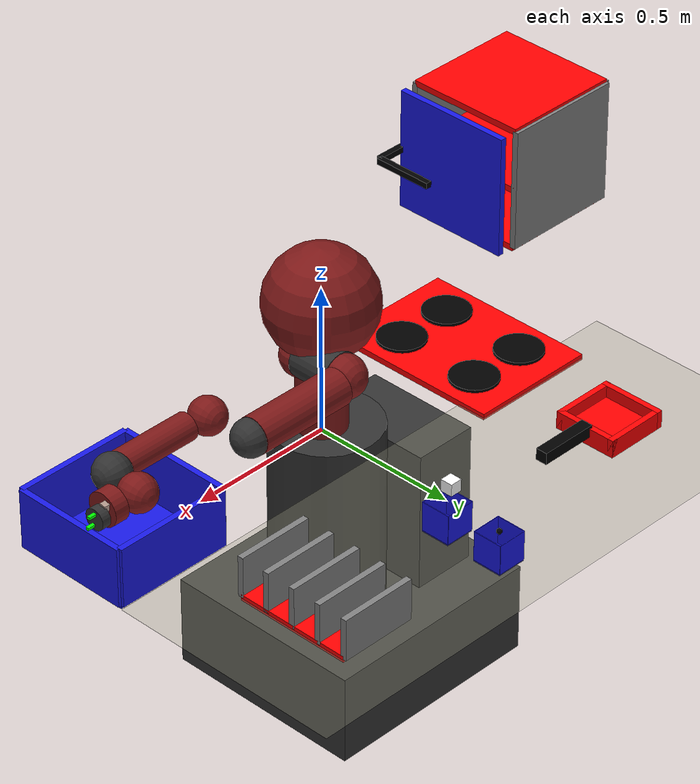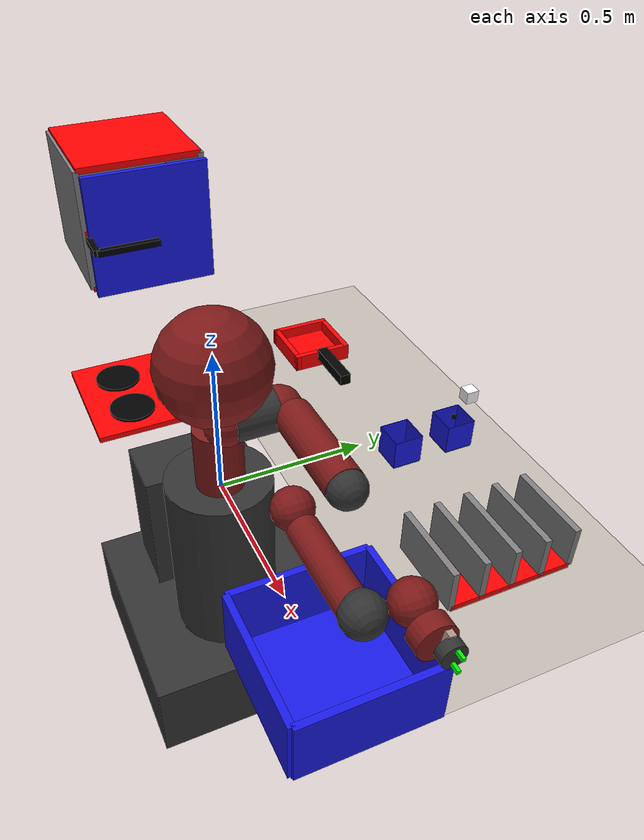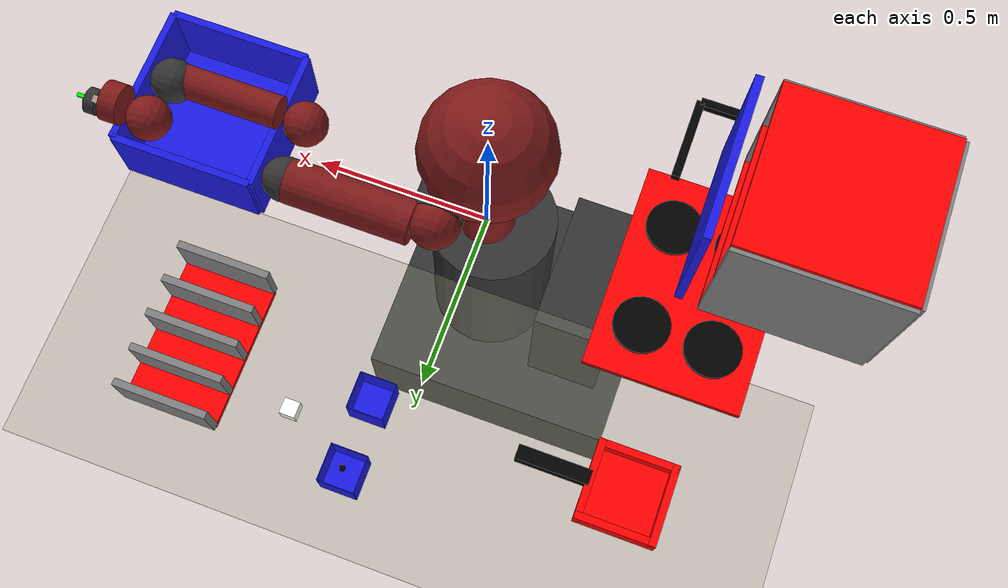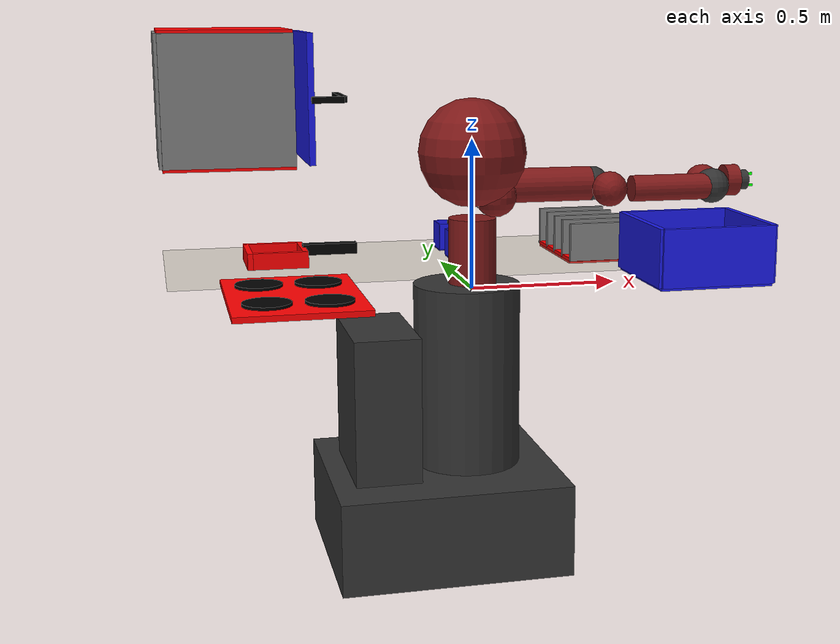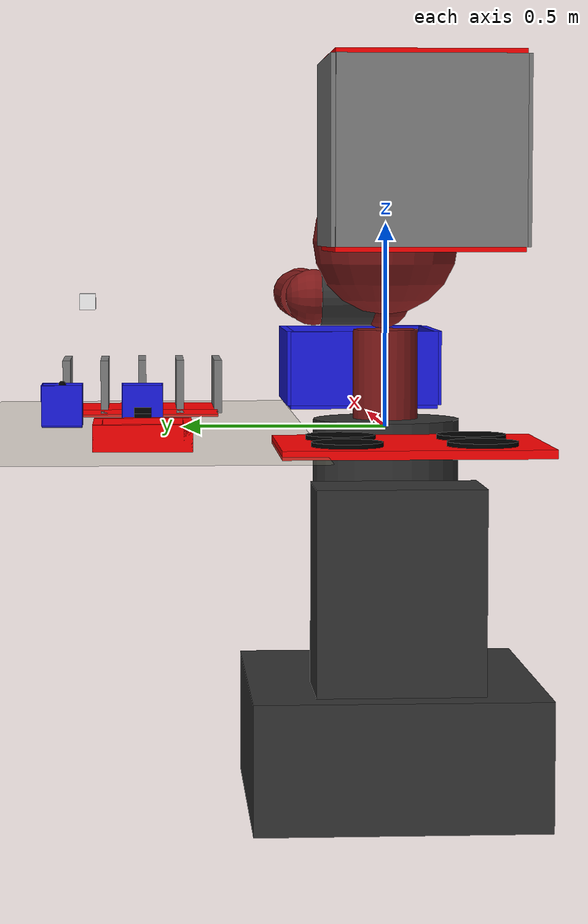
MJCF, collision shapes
<mujoco model="sawyer">
    <compiler angle="radian" meshdir="meshes/" />
    <size njmax="1000" nconmax="1000" />
    <asset>
        <mesh name="pedestal" file="pedestal.stl" />
        <mesh name="base" file="base.stl" />
        <mesh name="l0" file="l0.stl" />
        <mesh name="head" file="head.stl" />
        <mesh name="l1" file="l1.stl" />
        <mesh name="l2" file="l2.stl" />
        <mesh name="l3" file="l3.stl" />
        <mesh name="l4" file="l4.stl" />
        <mesh name="l5" file="l5.stl" />
        <mesh name="l6" file="l6.stl" />
        <mesh file="mug.stl" scale="0.0014419716113 0.0014419716113 0.0014419716113" name="object_mesh0"/>
        <mesh file="candle_holder.stl" scale="0.00221564763838 0.00221564763838 0.00221564763838" name="object_mesh1"/>
        <mesh scale="0.00391787640326 0.00391787640326 0.00391787640326" name="object_mesh2" file="Rook.stl"/>
        <mesh file="fox.stl" scale="0.00138148311578 0.00138148311578 0.00138148311578" name="object_mesh3"/>
        <mesh file="Gengar.stl" scale="0.000210652537981 0.000210652537981 0.000210652537981" name="object_mesh4"/>
        <mesh file="vase1.stl" scale="0.000775193841988 0.000775193841988 0.000775193841988" name="object_mesh5"/>
        <mesh file="Trophy.stl" scale="0.00449730778558 0.00449730778558 0.00449730778558" name="object_mesh6"/>
        <mesh file="cupcake.stl" scale="0.00191879658518 0.00191879658518 0.00191879658518" name="object_mesh7"/>
        <mesh file="Pawn.stl" scale="0.00338627830315 0.00338627830315 0.00338627830315" name="object_mesh8"/>
        <mesh name="object_mesh9" file="Love_Box_1.stl" scale="0.001411430619914 0.00141430619914 0.00211430619914"/>
    </asset>

    <default>
        <joint limited="true" damping="1" stiffness="0" armature=".1" user="0"/>
        <geom solref="0.008 1" solimp="0.95 0.95 0.01" margin="0.001" user="0"/>
        <motor ctrllimited="true" ctrlrange="-1 1"/>
        <position ctrllimited="true"/>

        <default class='0'>
            <geom friction="1 0.005 0.001" rgba=".75 .6 .5 1" contype="1" conaffinity="0"/>
        </default>

        <default class='1'>
            <geom friction="1 0.005 0.001" rgba=".7 .6 .55 1" contype="1" conaffinity="0"/>
        </default>

        <default class='arm'>
            <joint damping="5"/>
        </default>
    </default>

    <equality>
        <weld body1="mocap" body2="leftclaw"></weld>
    </equality>

    <worldbody>

        <geom name="tableTop" type="plane" pos="0 0.6 0" size="1. 0.4 0.5" rgba=".6 .6 .5 1" contype="1" conaffinity="1" />

        <geom name="tableTop2" type="plane" pos="0.6 0 0" size="0.4 0.4 0.5" rgba=".6 .6 .5 1" contype="1" conaffinity="1" />

        <geom name="tableTop3" type="plane" pos="-0.6 0 0" size="0.4 0.4 0.5" rgba=".6 .6 .5 1" contype="1" conaffinity="1" />

        <body name="sink" pos="0.8 0 0.01">
	        <geom type="box" pos="0 0 0" size="0.2 0.2 0.01" rgba=".1 .1 .9 1" contype="1" conaffinity="1"/>
	        <geom type="box" pos="0.2 0 0.1" size="0.01 0.2 0.1" rgba=".1 .1 .9 1" contype="1" conaffinity="1"/>
	        <geom type="box" pos="-0.2 0 0.1" size="0.01 0.2 0.1" rgba=".1 .1 .9 1" contype="1" conaffinity="1"/>
	        <geom type="box" pos="0 0.2 0.1" size="0.2 0.01 0.1" rgba=".1 .1 .9 1" contype="1" conaffinity="1"/>
	        <geom type="box" pos="0 -0.2 0.1" size="0.2 0.01 0.1" rgba=".1 .1 .9 1" contype="1" conaffinity="1"/>
	    </body>

	    <body name="cabinet" pos="-0.8 0 0.45">
	        <geom type="box" pos="0 0 0" size="0.2 0.2 0.01" rgba="1 0 0 1" contype="1" conaffinity="1"/>
	        <geom type="box" pos="-0.2 0 0.2" size="0.01 0.2 0.2" contype="1" conaffinity="1"/>
	        <geom type="box" pos="0 0.2 0.2" size="0.2 0.01 0.2"  contype="1" conaffinity="1"/>
	        <geom type="box" pos="0 -0.2 0.2" size="0.2 0.01 0.2" contype="1" conaffinity="1"/>
	        <geom type="box" pos="0 0 0.4" size="0.2 0.2 0.01" rgba="1 0 0 1" contype="1" conaffinity="1"/>
	        <geom type="box" pos="0 0 0.2" size="0.2 0.2 0.01" rgba="1 0 0 1" contype="1" conaffinity="1"/>

	        <body name="door" pos="0.25 0. 0.2">
	            <joint name="doorjoint" pos="0 0.2 0" axis="0 0 1" type="hinge" limited="true" range="0 3" damping="0.1" armature="0" />
	            <geom type="box" pos="0 0 0" size="0.01 0.2 0.2" rgba=".1 .1 .9 1" contype="1" conaffinity="1"/>
	           	<geom type="box" pos="0.05 -0.2 0" size="0.05 0.01 0.01" rgba="0 0 0 1" contype="1" conaffinity="1"/>
	           	<geom type="box" pos="0.1 -0.1 0" size="0.01 0.1 0.01" rgba="0 0 0 1" contype="1" conaffinity="1"/>
	        </body>

	    </body>

	    <body name="dishrack" pos="0.6 0.6 0.">
	        <geom type="box" pos="0 0 0" size="0.13 0.2 0.01" rgba="1 0 0 1" contype="1" conaffinity="1"/>
	        <geom type="box" pos="0 0.2 0.07" size="0.13 0.01 0.07"  contype="1" conaffinity="1"/>
	        <geom type="box" pos="0 0.1 0.07" size="0.13 0.01 0.07"  contype="1" conaffinity="1"/>
	        <geom type="box" pos="0 0.0 0.07" size="0.13 0.01 0.07"  contype="1" conaffinity="1"/>
	        <geom type="box" pos="0 -0.1 0.07" size="0.13 0.01 0.07"  contype="1" conaffinity="1"/>
	        <geom type="box" pos="0 -0.2 0.07" size="0.13 0.01 0.07"  contype="1" conaffinity="1"/>

	    </body>

	    <body name="stove" pos="-0.6 0 0.">
	        <geom type="box" pos="0 0 0" size="0.22 0.3 0.01" rgba="1 0 0 1" contype="1" conaffinity="1"/>
	        <geom type="cylinder" pos="-0.1 0.15 0.01" size="0.08 0.01" rgba="0 0 0 1" contype="1" conaffinity="1"/>
	       	<geom type="cylinder" pos="-0.1 0.15 0.01" size="0.08 0.01" rgba="0 0 0 1" contype="1" conaffinity="1"/>
	       	<geom type="cylinder" pos="-0.1 -0.15 0.01" size="0.08 0.01" rgba="0 0 0 1" contype="1" conaffinity="1"/>
   	       	<geom type="cylinder" pos="0.1 0.15 0.01" size="0.08 0.01" rgba="0 0 0 1" contype="1" conaffinity="1"/>
	       	<geom type="cylinder" pos="0.1 -0.15 0.01" size="0.08 0.01" rgba="0 0 0 1" contype="1" conaffinity="1"/>

	    </body>

	    <body name="saucepan" pos="-0.6 0.6 0.">

	       	<geom type="box" pos="0 0 0.01" size="0.1 0.1 0.01" rgba="1 0 0 1" contype="1" conaffinity="1"/>
	       	<geom type="box" pos="-0.1 0 0.03" size="0.01 0.11 0.03" rgba="1 0 0 1" contype="1" conaffinity="1"/>
	       	<geom type="box" pos="0.1 0 0.03" size="0.01 0.11 0.03" rgba="1 0 0 1" contype="1" conaffinity="1"/>
	       	<geom type="box" pos="0 0.1 0.03" size="0.11 0.01 0.03" rgba="1 0 0 1" contype="1" conaffinity="1"/>
	       	<geom type="box" pos="0 -0.1 0.03" size="0.11 0.01 0.03" rgba="1 0 0 1" contype="1" conaffinity="1"/>
	       	<geom type="box" pos="0.2 0 0.05" size="0.1 0.02 0.02" rgba="0 0 0 1" contype="1" conaffinity="1"/>
	       	<joint name="saucepanjoint" type="free" limited='false' damping="0" armature="0" />
	    </body>

        <body name="base" pos="0 0 0">
            <site name="basesite" pos="0 0 0" size="0.01" />
            <inertial pos="0 0 0" mass="0" diaginertia="0 0 0" />
            <body name="controller_box" pos="0 0 0">
                <inertial pos="-0.325 0 -0.38" mass="46.64" diaginertia="1.71363 1.27988 0.809981" />
                <geom size="0.11 0.2 0.265" pos="-0.325 0 -0.38" type="box" rgba="0.2 0.2 0.2 1"/>
            </body>
            <body name="pedestal_feet" pos="0 0 0">
                <inertial pos="-0.1225 0 -0.758" mass="167.09" diaginertia="8.16095 9.59375 15.0785" />
                <geom size="0.385 0.35 0.155" pos="-0.1225 0 -0.758" type="box" rgba="0.2 0.2 0.2 1"/>
            </body>
            <body name="torso" pos="0 0 0">
                <inertial pos="0 0 0" mass="0.0001" diaginertia="1e-08 1e-08 1e-08" />
                <geom size="0.05 0.05 0.05" type="box" contype="0" conaffinity="0" group="1" rgba="0.2 0.2 0.2 1" />
            </body>
            <body name="pedestal" pos="0 0 0">
                <inertial pos="0 0 0" quat="0.659267 -0.259505 -0.260945 0.655692" mass="60.864" diaginertia="6.0869 5.81635 4.20915" />
                <geom pos="0.26 0.345 -0.91488" quat="0.5 0.5 -0.5 -0.5" type="mesh" contype="0" conaffinity="0" group="1" rgba="0.2 0.2 0.2 1" mesh="pedestal" />
                <geom size="0.18 0.31" pos="-0.02 0 -0.29" type="cylinder" rgba="0.2 0.2 0.2 0" />
            </body>
            <body name="right_arm_base_link" pos="0 0 0">
                <inertial pos="-0.0006241 -2.8025e-05 0.065404" quat="-0.209285 0.674441 0.227335 0.670558" mass="2.0687" diaginertia="0.00740351 0.00681776 0.00672942" />
                <geom type="mesh" contype="0" conaffinity="0" group="1" rgba="0.5 0.1 0.1 1" mesh="base" />
                <geom size="0.08 0.12" pos="0 0 0.12" type="cylinder" rgba="0.5 0.1 0.1 0" />
                <body name="right_l0" pos="0 0 0.08">
                    <inertial pos="0.024366 0.010969 0.14363" quat="0.894823 0.00899958 -0.170275 0.412573" mass="5.3213" diaginertia="0.0651588 0.0510944 0.0186218" />
                    <joint name="right_j0" pos="0 0 0" axis="0 0 1" limited="true" range="-3.0503 3.0503" damping="10"/>
                    <geom type="mesh" contype="0" conaffinity="0" group="1" rgba="0.5 0.1 0.1 1" mesh="l0" />
                    <geom size="0.07" pos="0.08 0 0.23" rgba="0.5 0.1 0.1 0" />
                    <body name="head" pos="0 0 0.2965">
                        <inertial pos="0.0053207 -2.6549e-05 0.1021" quat="0.999993 7.08405e-05 -0.00359857 -0.000626247" mass="1.5795" diaginertia="0.0118334 0.00827089 0.00496574" />
                        <geom type="mesh" contype="0" conaffinity="0" group="1" rgba="0.5 0.1 0.1 1" mesh="head" />
                        <geom size="0.18" pos="0 0 0.08" rgba="0.5 0.1 0.1 0" />
                        <body name="screen" pos="0.03 0 0.105" quat="0.5 0.5 0.5 0.5">
                            <inertial pos="0 0 0" mass="0.0001" diaginertia="1e-08 1e-08 1e-08" />
                            <geom size="0.12 0.07 0.001" type="box" contype="0" conaffinity="0" group="1" rgba="0.2 0.2 0.2 0" />
                            <geom size="0.001" rgba="0.2 0.2 0.2 0" />
                        </body>
                        <body name="head_camera" pos="0.0228027 0 0.216572" quat="0.342813 -0.618449 0.618449 -0.342813">
                            <inertial pos="0.0228027 0 0.216572" quat="0.342813 -0.618449 0.618449 -0.342813" mass="0" diaginertia="0 0 0" />
                            <site name="headsite" pos="0 0 0" size="0.01" />
                        </body>
                    </body>
                    <body name="right_torso_itb" pos="-0.055 0 0.22" quat="0.707107 0 -0.707107 0">
                        <inertial pos="0 0 0" mass="0.0001" diaginertia="1e-08 1e-08 1e-08" />
                    </body>
                    <body name="right_l1" pos="0.081 0.05 0.237" quat="0.5 -0.5 0.5 0.5">
                        <inertial pos="-0.0030849 -0.026811 0.092521" quat="0.424888 0.891987 0.132364 -0.0794296" mass="4.505" diaginertia="0.0224339 0.0221624 0.0097097" />
                        <joint name="right_j1" pos="0 0 0" axis="0 0 1" limited="true" range="-3.8095 2.2736" damping="10"/>
                        <geom type="mesh" contype="0" conaffinity="0" group="1" rgba="0.5 0.1 0.1 1" mesh="l1" />
                        <geom size="0.07" pos="0 0 0.1225" rgba="0.5 0.1 0.1 0" />
                        <body name="right_l2" pos="0 -0.14 0.1425" quat="0.707107 0.707107 0 0">
                            <inertial pos="-0.00016044 -0.014967 0.13582" quat="0.707831 -0.0524761 0.0516007 0.702537" mass="1.745" diaginertia="0.0257928 0.025506 0.00292515" />
                            <joint name="right_j2" pos="0 0 0" axis="0 0 1" limited="true" range="-3.0426 3.0426" damping="10"/>
                            <geom type="mesh" contype="0" conaffinity="0" group="1" rgba="0.5 0.1 0.1 1" mesh="l2" />
                            <geom size="0.06 0.17" pos="0 0 0.08" type="cylinder" rgba="0.5 0.1 0.1 0" />
                            <body name="right_l3" pos="0 -0.042 0.26" quat="0.707107 -0.707107 0 0">
                                <site name="armsite" pos="0 0 0" size="0.01" />
                                <inertial pos="-0.0048135 -0.0281 -0.084154" quat="0.902999 0.385391 -0.0880901 0.168247" mass="2.5097" diaginertia="0.0102404 0.0096997 0.00369622" />
                                <joint name="right_j3" pos="0 0 0" axis="0 0 1" limited="true" range="-3.0439 3.0439" damping="10"/>
                                <geom type="mesh" contype="0" conaffinity="0" group="1" rgba="0.5 0.1 0.1 1" mesh="l3" />
                                <geom size="0.06" pos="0 -0.01 -0.12" rgba="0.5 0.1 0.1 0" />
                                <body name="right_l4" pos="0 -0.125 -0.1265" quat="0.707107 0.707107 0 0">
                                    <inertial pos="-0.0018844 0.0069001 0.1341" quat="0.803612 0.031257 -0.0298334 0.593582" mass="1.1136" diaginertia="0.0136549 0.0135493 0.00127353" />
                                    <joint name="right_j4" pos="0 0 0" axis="0 0 1" limited="true" range="-2.9761 2.9761" damping="10" />
                                    <geom type="mesh" contype="0" conaffinity="0" group="1" rgba="0.5 0.1 0.1 1" mesh="l4" />
                                    <geom size="0.045 0.15" pos="0 0 0.11" type="cylinder" rgba="0.5 0.1 0.1 0" />
                                    <body name="right_arm_itb" pos="-0.055 0 0.075" quat="0.707107 0 -0.707107 0">
                                        <inertial pos="0 0 0" mass="0.0001" diaginertia="1e-08 1e-08 1e-08" />
                                    </body>
                                    <body name="right_l5" pos="0 0.031 0.275" quat="0.707107 -0.707107 0 0">
                                        <inertial pos="0.0061133 -0.023697 0.076416" quat="0.404076 0.9135 0.0473125 0.00158335" mass="1.5625" diaginertia="0.00474131 0.00422857 0.00190672" />
                                        <joint name="right_j5" pos="0 0 0" axis="0 0 1" limited="true" range="-2.9761 2.9761" damping="10"/>
                                        <geom type="mesh" contype="0" conaffinity="0" group="1" rgba="0.5 0.1 0.1 1" mesh="l5" />
                                        <geom size="0.06" pos="0 0 0.1" rgba="0.5 0.1 0.1 0" />
                                        <body name="right_hand_camera" pos="0.039552 -0.033 0.0695" quat="0.707107 0 0.707107 0">
                                            <inertial pos="0.039552 -0.033 0.0695" quat="0.707107 0 0.707107 0" mass="0" diaginertia="0 0 0" />
                                        </body>
                                        <body name="right_wrist" pos="0 0 0.10541" quat="0.707107 0.707107 0 0">
                                            <inertial pos="0 0 0.10541" quat="0.707107 0.707107 0 0" mass="0" diaginertia="0 0 0" />
                                        </body>
                                        <body name="right_l6" pos="0 -0.11 0.1053" quat="0.0616248 0.06163 -0.704416 0.704416">
                                            <inertial pos="-8.0726e-06 0.0085838 -0.0049566" quat="0.479044 0.515636 -0.513069 0.491322" mass="0.3292" diaginertia="0.000360258 0.000311068 0.000214974" />
                                            <joint name="right_j6" pos="0 0 0" axis="0 0 1" limited="true" range="-4.7124 4.7124" damping="10"/>
                                            <geom type="mesh" contype="0" conaffinity="0" group="1" rgba="0.5 0.1 0.1 1" mesh="l6" />
                                            <geom size="0.055 0.025" pos="0 0.015 -0.01" type="cylinder" rgba="0.5 0.1 0.1 0" />
                                            <body name="right_hand" pos="0 0 0.0245" quat="0.707107 0 0 0.707107">
                                                <inertial pos="1e-08 1e-08 1e-08" quat="0.820473 0.339851 -0.17592 0.424708" mass="1e-08" diaginertia="1e-08 1e-08 1e-08" />
                                                <geom size="0.035 0.015" pos="0 0 0.02" type="cylinder" rgba="0.2 0.2 0.2 0"/>

<!--  ================= BEGIN GRIPPER ================= /-->
                                                <body name="claw" pos="0 0 0" quat="-1 0 1 0">
                                                    <geom class="1" name="Geomclaw" type="box" size="0.01 0.04 0.01" />

                                                    <body name="rightclaw" pos=".01 -.02 0" >
                                                        <geom name="rightclaw_it" class="1" type="box" pos="0 0 0" size="0.05 0.005 0.005" friction="0.001 0.005 0.0001" rgba="0.0 1.0 0.0 1.0"/>
                                                        <joint name="rc_close" type="slide" pos="0 0 0" axis="0 1 0" range="0 0.03" user="008"/>
                                                    </body>

                                                    <body name="leftclaw" pos=".01 .02 0">
                                                        <geom name="leftclaw_it" class="1" type="box" pos="0 0 0" size="0.05 0.005 0.005" friction="0.001 0.005 0.0001" rgba="0.0 1.0 0.0 1.0"/>
                                                        <site name="endeffector" pos="0 0 0" size="0.01" />
                                                    </body>
                                                </body>
<!--  ================= END GRIPPER ================= /-->

                                            </body>
                                        </body>
                                    </body>
                                    <body name="right_l4_2" pos="0 0 0">
                                        <inertial pos="1e-08 1e-08 1e-08" quat="0.820473 0.339851 -0.17592 0.424708" mass="1e-08" diaginertia="1e-08 1e-08 1e-08" />
                                        <geom size="0.06" pos="0 0.01 0.26" rgba="0.2 0.2 0.2 0"/>
                                    </body>
                                </body>
                            </body>
                            <body name="right_l2_2" pos="0 0 0">
                                <inertial pos="1e-08 1e-08 1e-08" quat="0.820473 0.339851 -0.17592 0.424708" mass="1e-08" diaginertia="1e-08 1e-08 1e-08" />
                                <geom size="0.06" pos="0 0 0.26" rgba="0.2 0.2 0.2 0"/>
                            </body>
                        </body>
                        <body name="right_l1_2" pos="0 0 0">
                            <inertial pos="1e-08 1e-08 1e-08" quat="0.820473 0.339851 -0.17592 0.424708" mass="1e-08" diaginertia="1e-08 1e-08 1e-08" />
                            <geom size="0.07 0.07" pos="0 0 0.035" type="cylinder" rgba="0.2 0.2 0.2 0"/>
                        </body>
                    </body>
                </body>
            </body>
        </body>

        <body mocap="true" name="mocap" pos="0.2369680365278436 0.7377722688452103 0.30233579064225752">
            <geom conaffinity="0" contype="0" pos="0 0 0" rgba="1.0 1.0 1.0 1.0" size="0.02 0.02 0.02" type="box"></geom>
        </body>

        <body name="cup" pos="0.1 0.8 0">
	        <geom type="box" pos="0 0 0" size="0.05 0.05 0.005" rgba=".1 .1 .9 1" contype="1" conaffinity="1"/>
	        <geom type="box" pos="0.05 0 0.05" size="0.001 0.05 0.05" rgba=".1 .1 .9 1" contype="1" conaffinity="1"/>
	        <geom type="box" pos="-0.05 0 0.05" size="0.001 0.05 0.05" rgba=".1 .1 .9 1" contype="1" conaffinity="1"/>
	        <geom type="box" pos="0 0.05 0.05" size="0.05 0.001 0.05" rgba=".1 .1 .9 1" contype="1" conaffinity="1"/>
	        <geom type="box" pos="0 -0.05 0.05" size="0.05 0.001 0.05" rgba=".1 .1 .9 1" contype="1" conaffinity="1"/>
            <joint name="cupjoint" type="free" limited='false' damping="0" armature="0" />
        </body>

        <body name="cup2" pos="0.1 0.6 0">
	        <geom type="box" pos="0 0 0" size="0.05 0.05 0.005" rgba=".1 .1 .9 1" contype="1" conaffinity="1"/>
	        <geom type="box" pos="0.05 0 0.05" size="0.001 0.05 0.05" rgba=".1 .1 .9 1" contype="1" conaffinity="1"/>
	        <geom type="box" pos="-0.05 0 0.05" size="0.001 0.05 0.05" rgba=".1 .1 .9 1" contype="1" conaffinity="1"/>
	        <geom type="box" pos="0 0.05 0.05" size="0.05 0.001 0.05" rgba=".1 .1 .9 1" contype="1" conaffinity="1"/>
	        <geom type="box" pos="0 -0.05 0.05" size="0.05 0.001 0.05" rgba=".1 .1 .9 1" contype="1" conaffinity="1"/>
            <joint name="cup2joint" type="free" limited='false' damping="0" armature="0" />
        </body>

        <body name="granular_media1" pos="0.1 0.8 0.1">
	        <geom type="sphere" pos="0 0 0" size="0.009" rgba="0 0 0 1" contype="1" conaffinity="1"/>
            <joint name="granular_media1joint" type="free" limited='false' damping="0" armature="0" />
        </body>

        <body name="granular_media2" pos="0.1 0.8 0.1">
	        <geom type="sphere" pos="0 0 0" size="0.009" rgba="0 0 0 1" contype="1" conaffinity="1"/>
            <joint name="granular_media2joint" type="free" limited='false' damping="0" armature="0" />
        </body>

        <body name="granular_media3" pos="0.1 0.8 0.1">
	        <geom type="sphere" pos="0 0 0" size="0.009" rgba="0 0 0 1" contype="1" conaffinity="1"/>
            <joint name="granular_media3joint" type="free" limited='false' damping="0" armature="0" />
        </body>

        <body name="granular_media4" pos="0.1 0.8 0.1">
	        <geom type="sphere" pos="0 0 0" size="0.009" rgba="0 0 0 1" contype="1" conaffinity="1"/>
            <joint name="granular_media4joint" type="free" limited='false' damping="0" armature="0" />
        </body>

        <body name="granular_media5" pos="0.1 0.8 0.1">
	        <geom type="sphere" pos="0 0 0" size="0.009" rgba="0 0 0 1" contype="1" conaffinity="1"/>
            <joint name="granular_media5joint" type="free" limited='false' damping="0" armature="0" />
        </body>

        <body name="granular_media6" pos="0.1 0.8 0.1">
	        <geom type="sphere" pos="0 0 0" size="0.009" rgba="0 0 0 1" contype="1" conaffinity="1"/>
            <joint name="granular_media6joint" type="free" limited='false' damping="0" armature="0" />
        </body>

        <body name="goal" pos="0 0 0">
            <joint name="goaljoint" type="free" limited='false' damping="0" armature="0" />
            <geom name="goalbox" type="sphere" pos="0 0 0" size="0.02" rgba=".9 .1 .1 1" contype="0" conaffinity="0"/>
            <site name="goal" pos="0 0 0" size="0.01" />
        </body>

    </worldbody>

    <actuator>
        <motor joint="right_j0" ctrlrange="-100.0 100.0" ctrllimited="false"/>
        <motor joint="right_j1" ctrlrange="-100.0 100.0" ctrllimited="false"/>
        <motor joint="right_j2" ctrlrange="-100.0 100.0" ctrllimited="false"/>
        <motor joint="right_j3" ctrlrange="-100.0 100.0" ctrllimited="false"/>
        <motor joint="right_j4" ctrlrange="-100.0 100.0" ctrllimited="false"/>
        <motor joint="right_j5" ctrlrange="-100.0 100.0" ctrllimited="false"/>
        <motor joint="right_j6" ctrlrange="-100.0 100.0" ctrllimited="false"/>
        <motor gear="1" joint="rc_close" name="slide"/>
    </actuator>

</mujoco>
